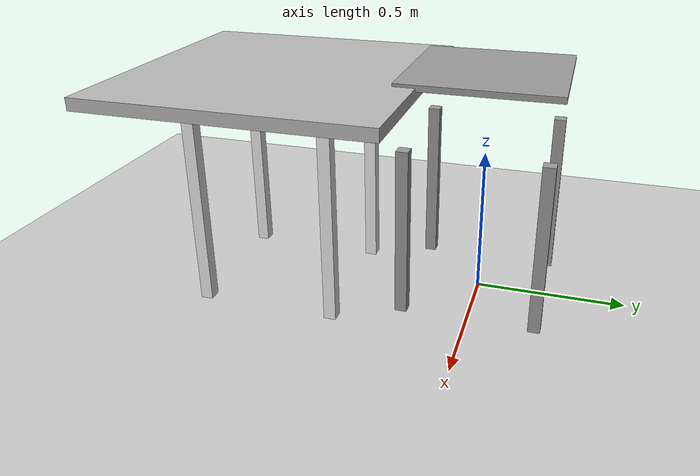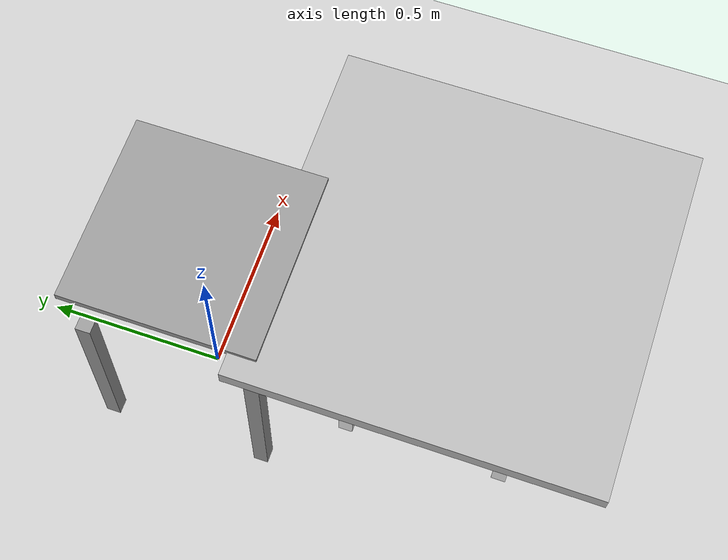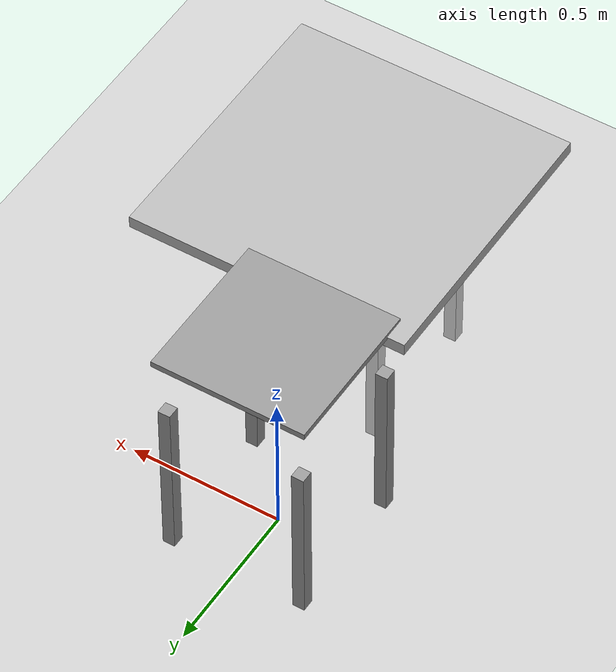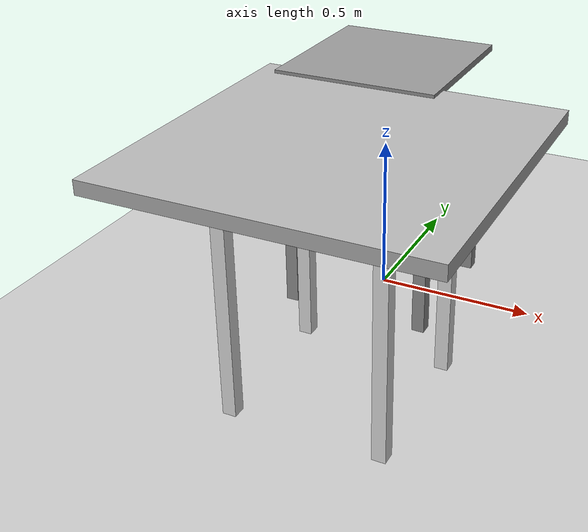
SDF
<sdf version="1.6">
 <world name="ur5_world">
  <plugin name="ros_link_attacher_plugin" filename="libgazebo_ros_link_attacher.so"/>
  <gravity>0 0 -9.81</gravity>
  <physics name="default_physics" default="0" type="ode">
   <max_step_size>0.001</max_step_size>
   <real_time_factor>1</real_time_factor>
   <real_time_update_rate>1000</real_time_update_rate>
  </physics>
  <scene><ambient>0.4 0.4 0.4 1</ambient><background>0.7 0.7 0.7 1</background><shadows>1</shadows></scene>
  <include><uri>model://sun</uri></include>
  <include><uri>model://ground_plane</uri></include>
  <model name="ur5_base"><include><uri>model://ur5_base</uri></include></model>
  <model name="end_table">
   <include><uri>model://end_table</uri><pose>0.15 -0.635 0 0 0 0</pose></include>
  </model>
 </world>
</sdf>

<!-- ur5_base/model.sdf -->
<sdf version="1.6">
  <model name="ur5_base">
    <static>true</static>

    <link name="top_plate">
      <pose>0 0 0.775 0 0 0</pose>
      <collision name="top_plate_collision">
        <geometry>
          <box>
            <size>0.5 0.5 0.02</size>
          </box>
        </geometry>
        <surface>
          <contact>
            <collide_bitmask>0x01</collide_bitmask>
          </contact>
        </surface>
      </collision>
      <visual name="top_plate_visual">
        <geometry>
          <box>
            <size>0.5 0.5 0.02</size>
          </box>
        </geometry>
        <material>
          <script>
            <uri>file://media/materials/scripts/gazebo.material</uri>
            <name>Gazebo/Grey</name>
          </script>
        </material>
      </visual>
    </link>
    <link name="leg1">
      <pose>0.22 0.22 0.285 0 0 0</pose>
      <collision name="leg1_collision">
        <geometry>
          <box>
            <size>0.04 0.04 0.57</size>
          </box>
        </geometry>
      </collision>
      <visual name="leg1_visual">
        <geometry>
          <box>
            <size>0.04 0.04 0.57</size>
          </box>
        </geometry>
        <material>
          <script>
            <uri>file://media/materials/scripts/gazebo.material</uri>
            <name>Gazebo/Grey</name>
          </script>
        </material>
      </visual>
    </link>
    <link name="leg2">
      <pose>-0.22 0.22 0.285 0 0 0</pose>
      <collision name="leg2_collision">
        <geometry>
          <box>
            <size>0.04 0.04 0.57</size>
          </box>
        </geometry>
      </collision>
      <visual name="leg2_visual">
        <geometry>
          <box>
            <size>0.04 0.04 0.57</size>
          </box>
        </geometry>
        <material>
          <script>
            <uri>file://media/materials/scripts/gazebo.material</uri>
            <name>Gazebo/Grey</name>
          </script>
        </material>
      </visual>
    </link>
    <link name="leg3">
      <pose>0.22 -0.22 0.285 0 0 0</pose>
      <collision name="leg3_collision">
        <geometry>
          <box>
            <size>0.04 0.04 0.57</size>
          </box>
        </geometry>
      </collision>
      <visual name="leg3_visual">
        <geometry>
          <box>
            <size>0.04 0.04 0.57</size>
          </box>
        </geometry>
        <material>
          <script>
            <uri>file://media/materials/scripts/gazebo.material</uri>
            <name>Gazebo/Grey</name>
          </script>
        </material>
      </visual>
    </link>
    <link name="leg4">
      <pose>-0.22 -0.22 0.285 0 0 0</pose>
      <collision name="leg4_collision">
        <geometry>
          <box>
            <size>0.04 0.04 0.57</size>
          </box>
        </geometry>
      </collision>
      <visual name="leg4_visual">
        <geometry>
          <box>
            <size>0.04 0.04 0.57</size>
          </box>
        </geometry>
        <material>
          <script>
            <uri>file://media/materials/scripts/gazebo.material</uri>
            <name>Gazebo/Grey</name>
          </script>
        </material>
      </visual>
    </link>
  </model>
</sdf>

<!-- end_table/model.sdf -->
<sdf version="1.6">
  <model name="end_table">
    <static>true</static>

    <link name="top_plate">
      <pose>0 0 0.755 0 0 0</pose>
      <collision name="top_plate_collision">
        <geometry>
          <box>
            <size>0.913 0.913 0.04</size>
          </box>
        </geometry>
        <surface>
          <contact>
            <collide_bitmask>0x01</collide_bitmask>
          </contact>
        </surface>
      </collision>
      <visual name="top_plate_visual">
        <geometry>
          <box>
            <size>0.913 0.913 0.04</size>
          </box>
        </geometry>
        <material>
          <script>
            <uri>model://end_table/materials/scripts</uri>
            <uri>model://end_table/materials/textures</uri>
            <name>grid/Image</name>
          </script>
        </material>
      </visual>
    </link>
    <link name="leg1">
      <pose>0.22 0.22 0.4 0 0 0</pose>
      <collision name="leg1_collision">
        <geometry>
          <box>
            <size>0.04 0.04 0.74</size>
          </box>
        </geometry>
      </collision>
      <visual name="leg1_visual">
        <geometry>
          <box>
            <size>0.04 0.04 0.74</size>
          </box>
        </geometry>
        <material>
          <script>
            <uri>file://media/materials/scripts/gazebo.material</uri>
            <name>Gazebo/White</name>
          </script>
        </material>
      </visual>
    </link>
    <link name="leg2">
      <pose>-0.22 0.22 0.4 0 0 0</pose>
      <collision name="leg2_collision">
        <geometry>
          <box>
            <size>0.04 0.04 0.74</size>
          </box>
        </geometry>
      </collision>
      <visual name="leg2_visual">
        <geometry>
          <box>
            <size>0.04 0.04 0.74</size>
          </box>
        </geometry>
        <material>
          <script>
            <uri>file://media/materials/scripts/gazebo.material</uri>
            <name>Gazebo/White</name>
          </script>
        </material>
      </visual>
    </link>
    <link name="leg3">
      <pose>0.22 -0.22 0.4 0 0 0</pose>
      <collision name="leg3_collision">
        <geometry>
          <box>
            <size>0.04 0.04 0.74</size>
          </box>
        </geometry>
      </collision>
      <visual name="leg3_visual">
        <geometry>
          <box>
            <size>0.04 0.04 0.74</size>
          </box>
        </geometry>
        <material>
          <script>
            <uri>file://media/materials/scripts/gazebo.material</uri>
            <name>Gazebo/White</name>
          </script>
        </material>
      </visual>
    </link>
    <link name="leg4">
      <pose>-0.22 -0.22 0.4 0 0 0</pose>
      <collision name="leg4_collision">
        <geometry>
          <box>
            <size>0.04 0.04 0.74</size>
          </box>
        </geometry>
      </collision>
      <visual name="leg4_visual">
        <geometry>
          <box>
            <size>0.04 0.04 0.74</size>
          </box>
        </geometry>
        <material>
          <script>
            <uri>file://media/materials/scripts/gazebo.material</uri>
            <name>Gazebo/White</name>
          </script>
        </material>
      </visual>
    </link>
  </model>
</sdf>
